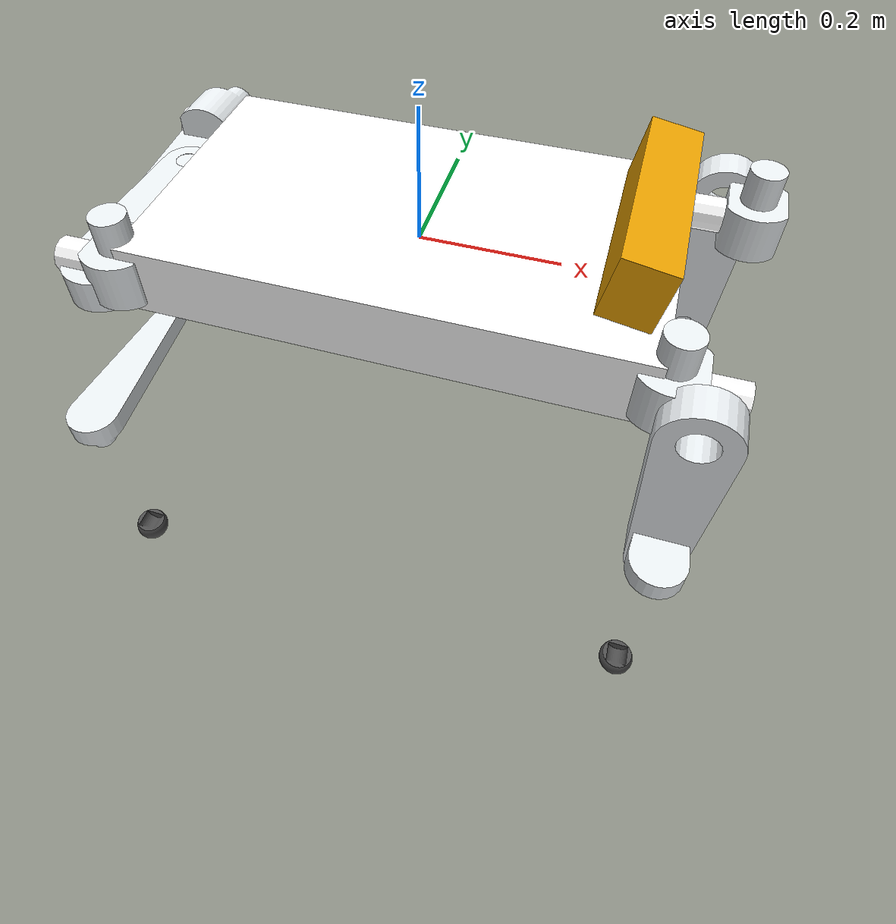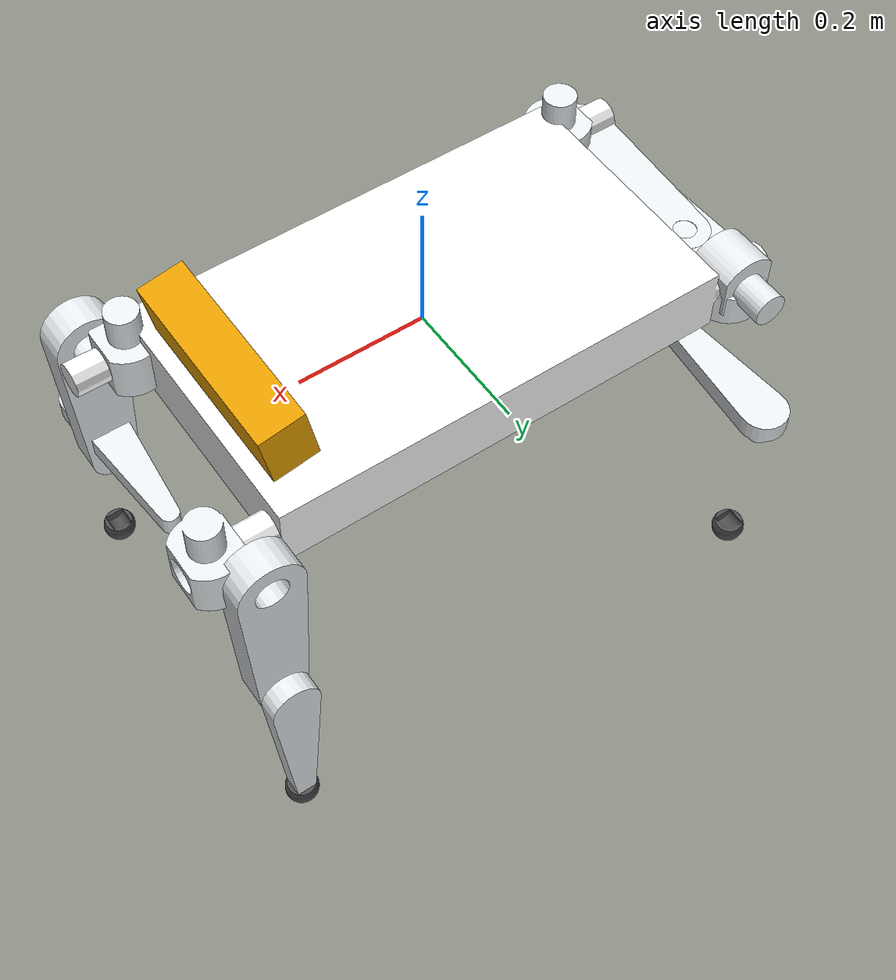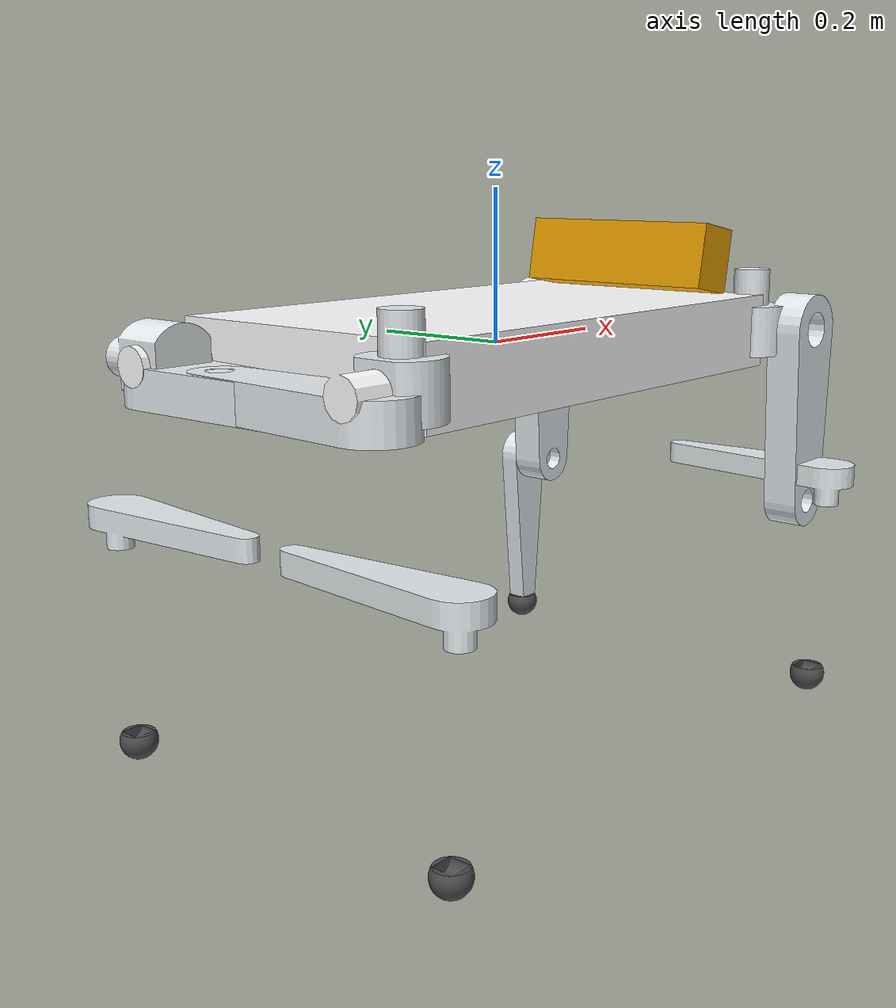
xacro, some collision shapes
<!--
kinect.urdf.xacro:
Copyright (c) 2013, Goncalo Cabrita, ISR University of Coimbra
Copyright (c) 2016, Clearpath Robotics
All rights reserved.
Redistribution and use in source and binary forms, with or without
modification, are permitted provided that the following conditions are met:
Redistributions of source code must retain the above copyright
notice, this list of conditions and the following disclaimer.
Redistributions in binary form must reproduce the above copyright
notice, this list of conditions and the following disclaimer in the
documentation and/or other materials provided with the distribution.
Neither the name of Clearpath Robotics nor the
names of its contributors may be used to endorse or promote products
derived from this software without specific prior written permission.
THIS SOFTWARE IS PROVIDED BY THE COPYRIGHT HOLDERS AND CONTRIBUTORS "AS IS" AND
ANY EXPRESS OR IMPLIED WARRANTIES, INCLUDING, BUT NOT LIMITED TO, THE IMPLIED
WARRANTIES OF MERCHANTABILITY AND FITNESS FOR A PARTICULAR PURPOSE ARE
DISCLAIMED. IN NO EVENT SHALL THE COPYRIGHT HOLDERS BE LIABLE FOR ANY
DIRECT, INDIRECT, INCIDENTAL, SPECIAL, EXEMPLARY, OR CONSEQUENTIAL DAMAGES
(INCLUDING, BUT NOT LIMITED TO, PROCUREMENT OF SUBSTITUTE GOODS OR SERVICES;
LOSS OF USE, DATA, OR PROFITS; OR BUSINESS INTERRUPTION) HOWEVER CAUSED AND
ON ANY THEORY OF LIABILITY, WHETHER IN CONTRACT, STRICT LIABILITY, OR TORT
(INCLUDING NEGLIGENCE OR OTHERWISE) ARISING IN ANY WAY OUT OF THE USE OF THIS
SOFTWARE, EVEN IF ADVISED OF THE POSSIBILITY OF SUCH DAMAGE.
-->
<?xml version="1.0" ?>
<robot name="simpledog" xmlns:xacro="http://ros.org/wiki/xacro">
<xacro:arg name="laser_visual"  default="false"/>
<xacro:arg name="camera_visual" default="false"/>
<xacro:arg name="imu_visual"    default="false"/>
<xacro:arg name="kinect_enabled"    default="true"/>
  <xacro:include filename="$(find simpledog)/urdf/simpledog_gazebo.urdf.xacro" />
  <xacro:include filename="$(find simpledog)/urdf/joint_gazebo.urdf.xacro" />
  <xacro:include filename="$(find simpledog)/urdf/kinect.urdf.xacro"/>
  <xacro:include filename="$(find simpledog)/urdf/foot_sensor_gazebo.urdf.xacro" />
<!--load kinect urdf-->
<xacro:if value="$(arg kinect_enabled)">
  <xacro:kinect_camera prefix="camera" robot_namespace="$(arg robot_namespace)"/>
  <joint name="kinect_frame_joint" type="fixed">
    <origin xyz="0.3 0 0.1" rpy="0 0.18 0" />
    <parent link="base_link"/>
    <child link="camera_link"/>
  </joint>
</xacro:if>

<!-- simple dog joints macros configure the joint driver and param-->
<xacro:simpledog_joint joint_prefix="front_left_1_"> </xacro:simpledog_joint>
<xacro:simpledog_joint joint_prefix="front_left_2_"> </xacro:simpledog_joint>
<xacro:simpledog_joint joint_prefix="front_left_3_"> </xacro:simpledog_joint>
<xacro:simpledog_joint joint_prefix="front_right_1_"> </xacro:simpledog_joint>
<xacro:simpledog_joint joint_prefix="front_right_2_"> </xacro:simpledog_joint>
<xacro:simpledog_joint joint_prefix="front_right_3_"> </xacro:simpledog_joint>
<xacro:simpledog_joint joint_prefix="rear_right_1_"> </xacro:simpledog_joint>
<xacro:simpledog_joint joint_prefix="rear_right_2_"> </xacro:simpledog_joint>
<xacro:simpledog_joint joint_prefix="rear_right_3_"> </xacro:simpledog_joint>
<xacro:simpledog_joint joint_prefix="rear_left_1_"> </xacro:simpledog_joint>
<xacro:simpledog_joint joint_prefix="rear_left_2_"> </xacro:simpledog_joint>
<xacro:simpledog_joint joint_prefix="rear_left_3_"> </xacro:simpledog_joint>

<xacro:simpledog_foot_sensors foot_prefix="lf_foot" joint_prefix="front_left_3_"> </xacro:simpledog_foot_sensors>
<xacro:simpledog_foot_sensors foot_prefix="rf_foot" joint_prefix="front_right_3_"> </xacro:simpledog_foot_sensors>
<xacro:simpledog_foot_sensors foot_prefix="rh_foot" joint_prefix="rear_right_3_"> </xacro:simpledog_foot_sensors>
<xacro:simpledog_foot_sensors foot_prefix="lh_foot" joint_prefix="rear_left_3_"> </xacro:simpledog_foot_sensors>

<link
    name="base_link">
    <inertial>
      <origin
        xyz="2.919E-17 -4.8141E-17 9.4163E-19"
        rpy="0 0 0" />
      <mass
        value="24.0" />
      <inertia
        ixx="0.74932"
        ixy="-1.2062E-17"
        ixz="-2.0602E-16"
        iyy="2.3017"
        iyz="-3.8366E-17"
        izz="2.9675" />
    </inertial>
    <visual>
      <origin
        xyz="0 0 0"
        rpy="0 0 0" />
      <geometry>
        <mesh
          filename="package://simpledog/meshes/base_link.STL" />
      </geometry>
      <material
        name="">
        <color
          rgba="1 1 1 1" />
      </material>
    </visual>
    <collision>
      <origin
        xyz="0 0 0"
        rpy="0 0 0" />
      <geometry>
        <mesh
          filename="package://simpledog/meshes/base_link.STL" />
      </geometry>
    </collision>
  </link>
  <link
    name="front_left_1_Link">
    <inertial>
      <origin
        xyz="1.7015E-17 0.012793 -0.00023552"
        rpy="0 0 0" />
      <mass
        value="1.1709" />
      <inertia
        ixx="0.001719"
        ixy="2.9302E-20"
        ixz="-1.6433E-19"
        iyy="0.0013167"
        iyz="-7.6795E-20"
        izz="0.0021511" />
    </inertial>
    <visual>
      <origin
        xyz="0 0 0"
        rpy="0 0 0" />
      <geometry>
        <mesh
          filename="package://simpledog/meshes/front_left_1_Link.STL" />
      </geometry>
      <material
        name="">
        <color
          rgba="0.89804 0.91765 0.92941 1" />
      </material>
    </visual>
    <collision>
      <origin
        xyz="0 0 0"
        rpy="0 0 0" />
      <geometry>
        <mesh
          filename="package://simpledog/meshes/front_left_1_Link.STL" />
      </geometry>
    </collision>
  </link>
  <joint
    name="front_left_1_joint"
    type="revolute">
    <origin
      xyz="0.400 0.175 0"
      rpy="1.57079632679453 1.57051603921301 1.57079632679453" />
    <parent
      link="base_link" />
    <child
      link="front_left_1_Link" />
    <axis
      xyz="0 0 1" />
      <limit
      effort="300"
      velocity="10"
      lower="-3.0"
      upper="3.0"/>
      <dynamics damping="0.7"/>
  </joint>
  <link
    name="front_left_2_Link">
    <inertial>
      <origin
        xyz="0.11439 0.00028184 0.05942"
        rpy="0 0 0" />
      <mass
        value="1.3902" />
      <inertia
        ixx="0.0030209"
        ixy="-5.6504E-20"
        ixz="2.8413E-18"
        iyy="0.026875"
        iyz="1.5349E-06"
        izz="0.028484" />
    </inertial>
    <visual>
      <origin
        xyz="0 0 0"
        rpy="0 0 0" />
      <geometry>
        <mesh
          filename="package://simpledog/meshes/front_left_2_Link.STL" />
      </geometry>
      <material
        name="">
        <color
          rgba="0.89804 0.91765 0.92941 1" />
      </material>
    </visual>
    <collision>
      <origin
        xyz="0 0 0"
        rpy="0 0 0" />
      <geometry>
        <mesh
          filename="package://simpledog/meshes/front_left_2_Link.STL" />
      </geometry>
    </collision>
  </link>
  <joint
    name="front_left_2_joint"
    type="revolute">
    <origin
      xyz="0 0 0"
      rpy="-1.5708 0 0" />
    <parent
      link="front_left_1_Link" />
    <child
      link="front_left_2_Link" />
    <axis
      xyz="0 0 1" />
      <limit
      effort="300"
      velocity="10"
      lower="-3.0"
      upper="3.0"/>
      <dynamics damping="0.7"/>
  </joint>
  <link
    name="front_left_3_Link">
    <inertial>
      <origin
        xyz="0.087825 1.529E-05 -0.016708"
        rpy="0 0 0" />
      <mass
        value="1.3523" />
      <inertia
        ixx="0.00053032"
        ixy="-8.5291E-07"
        ixz="-0.00020744"
        iyy="0.0091429"
        iyz="-8.3738E-08"
        izz="0.009338" />
    </inertial>
    <visual>
      <origin
        xyz="0 0 0"
        rpy="0 0 0" />
      <geometry>
        <mesh
          filename="package://simpledog/meshes/front_left_3_Link.STL" />
      </geometry>
      <material
        name="">
        <color
          rgba="0.89804 0.91765 0.92941 1" />
      </material>
    </visual>
    <collision>
      <origin
        xyz="0 0 0"
        rpy="0 0 0" />
      <geometry>
        <mesh
          filename="package://simpledog/meshes/front_left_3_Link.STL" />
      </geometry>
    </collision>
  </link>
  <joint
    name="front_left_3_joint"
    type="revolute">
    <origin
      xyz="0.250069171339977 0.000334332414087979 0.11441948932032"
      rpy="0 0 0" />
    <parent
      link="front_left_2_Link" />
    <child
      link="front_left_3_Link" />
    <axis
      xyz="0 0 1" />
      <limit
      effort="300"
      velocity="10"
      lower="-3.0"
      upper="3.0"/>
      <dynamics damping="0.7"/>
  </joint>
  <link
    name="lf_foot_Link">
    <inertial>
      <origin
        xyz="0.0178251114319979 0 0"
        rpy="0 0 0" />
      <mass
        value="0.0556193699314689" />
      <inertia
        ixx="1.65498601680364E-05"
        ixy="-1.00565663974796E-21"
        ixz="1.3524403015242E-22"
        iyy="1.23221647613412E-05"
        iyz="-3.56241096455504E-11"
        izz="1.25699738250509E-05" />
    </inertial>
    <visual>
      <origin
        xyz="0 0 0"
        rpy="0 0 0" />
      <geometry>
        <mesh
          filename="package://simpledog/meshes/lf_foot_Link.STL" />
      </geometry>
      <material
        name="">
        <color
          rgba="0.298039215686275 0.298039215686275 0.298039215686275 1" />
      </material>
    </visual>
    <collision>
      <origin
        xyz="0 0 0"
        rpy="0 0 0" />
      <geometry>
        <mesh
          filename="package://simpledog/meshes/lf_foot_Link.STL" />
      </geometry>
    </collision>
  </link>
  <joint
    name="lf_foot_joint"
    type="fixed">
    <origin
      xyz="0.250003601978058 0 -0.0149398452771417"
      rpy="0 0 0" />
    <parent
      link="front_left_3_Link" />
    <child
      link="lf_foot_Link" />
    <axis
      xyz="0 0 0" />
  </joint>
  <link
    name="front_right_1_Link">
    <inertial>
      <origin
        xyz="9.7104E-17 0.012793 1.6653E-16"
        rpy="0 0 0" />
      <mass
        value="1.1709" />
      <inertia
        ixx="0.001719"
        ixy="-5.88E-19"
        ixz="-1.7779E-19"
        iyy="0.0013167"
        iyz="-2.0543E-19"
        izz="0.0021511" />
    </inertial>
    <visual>
      <origin
        xyz="0 0 0"
        rpy="0 0 0" />
      <geometry>
        <mesh
          filename="package://simpledog/meshes/front_right_1_Link.STL" />
      </geometry>
      <material
        name="">
        <color
          rgba="0.89804 0.91765 0.92941 1" />
      </material>
    </visual>
    <collision>
      <origin
        xyz="0 0 0"
        rpy="0 0 0" />
      <geometry>
        <mesh
          filename="package://simpledog/meshes/front_right_1_Link.STL" />
      </geometry>
    </collision>
  </link>
  <joint
    name="front_right_1_joint"
    type="revolute">
    <origin
      xyz="0.4 -0.175 0"
      rpy="1.5708 1.5708 -1.5708" />
    <parent
      link="base_link" />
    <child
      link="front_right_1_Link" />
    <axis
      xyz="0 0 1" />
      <limit
      effort="300"
      velocity="10"
      lower="-3.0"
      upper="3.0"/>
      <dynamics damping="0.7"/>
  </joint>
  <link
    name="front_right_2_Link">
    <inertial>
      <origin
        xyz="0.11432 -5.5511E-17 0.05942"
        rpy="0 0 0" />
      <mass
        value="1.3902" />
      <inertia
        ixx="0.0030209"
        ixy="-4.0905E-18"
        ixz="-8.1586E-10"
        iyy="0.026875"
        iyz="2.3399E-19"
        izz="0.028484" />
    </inertial>
    <visual>
      <origin
        xyz="0 0 0"
        rpy="0 0 0" />
      <geometry>
        <mesh
          filename="package://simpledog/meshes/front_right_2_Link.STL" />
      </geometry>
      <material
        name="">
        <color
          rgba="0.89804 0.91765 0.92941 1" />
      </material>
    </visual>
    <collision>
      <origin
        xyz="0 0 0"
        rpy="0 0 0" />
      <geometry>
        <mesh
          filename="package://simpledog/meshes/front_right_2_Link.STL" />
      </geometry>
    </collision>
  </link>
  <joint
    name="front_right_2_joint"
    type="revolute">
    <origin
      xyz="0 0 0"
      rpy="-1.5708 0 0" />
    <parent
      link="front_right_1_Link" />
    <child
      link="front_right_2_Link" />
    <axis
      xyz="0 0 1" />
      <limit
      effort="300"
      velocity="10"
      lower="-3.0"
      upper="3.0"/>
      <dynamics damping="0.7"/>
  </joint>
  <link
    name="front_right_3_Link">
    <inertial>
      <origin
        xyz="0.087821 6.7221E-06 -0.016729"
        rpy="0 0 0" />
      <mass
        value="1.3523" />
      <inertia
        ixx="0.00053022"
        ixy="-9.5809E-07"
        ixz="-0.00020532"
        iyy="0.0091429"
        iyz="1.6437E-08"
        izz="0.0093381" />
    </inertial>
    <visual>
      <origin
        xyz="0 0 0"
        rpy="0 0 0" />
      <geometry>
        <mesh
          filename="package://simpledog/meshes/front_right_3_Link.STL" />
      </geometry>
      <material
        name="">
        <color
          rgba="0.89804 0.91765 0.92941 1" />
      </material>
    </visual>
    <collision>
      <origin
        xyz="0 0 0"
        rpy="0 0 0" />
      <geometry>
        <mesh
          filename="package://simpledog/meshes/front_right_3_Link.STL" />
      </geometry>
    </collision>
  </link>
  <joint
    name="front_right_3_joint"
    type="revolute">
    <origin
      xyz="0.249999996334044 0 0.114419764295838"
      rpy="0 0 0" />
    <parent
      link="front_right_2_Link" />
    <child
      link="front_right_3_Link" />
    <axis
      xyz="0 0 1" />
      <limit
      effort="300"
      velocity="10"
      lower="-3.0"
      upper="3.0"/>
      <dynamics damping="0.7"/>
  </joint>
  <link
    name="rf_foot_Link">
    <inertial>
      <origin
        xyz="0.017825 0 0"
        rpy="0 0 0" />
      <mass
        value="0.055619" />
      <inertia
        ixx="1.655E-05"
        ixy="2.2089E-21"
        ixz="-1.1638E-21"
        iyy="1.2322E-05"
        iyz="-2.0835E-21"
        izz="1.257E-05" />
    </inertial>
    <visual>
      <origin
        xyz="0 0 0"
        rpy="0 0 0" />
      <geometry>
        <mesh
          filename="package://simpledog/meshes/rf_foot_Link.STL" />
      </geometry>
      <material
        name="">
        <color
          rgba="0.29804 0.29804 0.29804 1" />
      </material>
    </visual>
    <collision>
      <origin
        xyz="0 0 0"
        rpy="0 0 0" />
      <geometry>
        <mesh
          filename="package://simpledog/meshes/rf_foot_Link.STL" />
      </geometry>
    </collision>
  </link>
  <joint
    name="rf_foot_joint"
    type="fixed">
    <origin
      xyz="0.25 0 -0.0149999996816874"
      rpy="-0.00020601381558494 5.03069808033274E-17 -4.99600361081321E-16" />
    <parent
      link="front_right_3_Link" />
    <child
      link="rf_foot_Link" />
    <axis
      xyz="0 0 0" />
  </joint>
  <link
    name="rear_left_1_Link">
    <inertial>
      <origin
        xyz="5.7896E-17 0.012793 2.7756E-16"
        rpy="0 0 0" />
      <mass
        value="1.1709" />
      <inertia
        ixx="0.001719"
        ixy="-2.0371E-19"
        ixz="5.3128E-21"
        iyy="0.0013167"
        iyz="-3.3901E-19"
        izz="0.0021511" />
    </inertial>
    <visual>
      <origin
        xyz="0 0 0"
        rpy="0 0 0" />
      <geometry>
        <mesh
          filename="package://simpledog/meshes/rear_left_1_Link.STL" />
      </geometry>
      <material
        name="">
        <color
          rgba="0.89804 0.91765 0.92941 1" />
      </material>
    </visual>
    <collision>
      <origin
        xyz="0 0 0"
        rpy="0 0 0" />
      <geometry>
        <mesh
          filename="package://simpledog/meshes/rear_left_1_Link.STL" />
      </geometry>
    </collision>
  </link>
  <joint
    name="rear_left_1_joint"
    type="revolute">
    <origin
      xyz="-0.4 0.175 0"
      rpy="1.57079632679488 1.56519932988528 1.57079632679488" />
    <parent
      link="base_link" />
    <child
      link="rear_left_1_Link" />
    <axis
      xyz="0 0 1" />
      <limit
      effort="300"
      velocity="10"
      lower="-3.0"
      upper="3.0"/>
      <dynamics damping="0.7"/>
  </joint>
  <link
    name="rear_left_2_Link">
    <inertial>
      <origin
        xyz="0.11432 0 0.05942"
        rpy="0 0 0" />
      <mass
        value="1.3902" />
      <inertia
        ixx="0.0030209"
        ixy="-1.8526E-18"
        ixz="2.5242E-19"
        iyy="0.026875"
        iyz="3.7608E-19"
        izz="0.028484" />
    </inertial>
    <visual>
      <origin
        xyz="0 0 0"
        rpy="0 0 0" />
      <geometry>
        <mesh
          filename="package://simpledog/meshes/rear_left_2_Link.STL" />
      </geometry>
      <material
        name="">
        <color
          rgba="0.89804 0.91765 0.92941 1" />
      </material>
    </visual>
    <collision>
      <origin
        xyz="0 0 0"
        rpy="0 0 0" />
      <geometry>
        <mesh
          filename="package://simpledog/meshes/rear_left_2_Link.STL" />
      </geometry>
    </collision>
  </link>
  <joint
    name="rear_left_2_joint"
    type="revolute">
    <origin
      xyz="0 0 0"
      rpy="-1.5707963267949 0 0" />
    <parent
      link="rear_left_1_Link" />
    <child
      link="rear_left_2_Link" />
    <axis
      xyz="0 0 1" />
      <limit
      effort="300"
      velocity="10"
      lower="-3.0"
      upper="3.0"/>
      <dynamics damping="0.7"/>
  </joint>
  <link
    name="rear_left_3_Link">
    <inertial>
      <origin
        xyz="0.087821 5.7424E-05 -0.016729"
        rpy="0 0 0" />
      <mass
        value="1.3523" />
      <inertia
        ixx="0.00053022"
        ixy="-3.3581E-07"
        ixz="-0.00020532"
        iyy="0.0091429"
        iyz="-5.7512E-07"
        izz="0.0093381" />
    </inertial>
    <visual>
      <origin
        xyz="0 0 0"
        rpy="0 0 0" />
      <geometry>
        <mesh
          filename="package://simpledog/meshes/rear_left_3_Link.STL" />
      </geometry>
      <material
        name="">
        <color
          rgba="0.89804 0.91765 0.92941 1" />
      </material>
    </visual>
    <collision>
      <origin
        xyz="0 0 0"
        rpy="0 0 0" />
      <geometry>
        <mesh
          filename="package://simpledog/meshes/rear_left_3_Link.STL" />
      </geometry>
    </collision>
  </link>
  <joint
    name="rear_left_3_joint"
    type="revolute">
    <origin
      xyz="0.25 0 0.114419756285561"
      rpy="0 0 0" />
    <parent
      link="rear_left_2_Link" />
    <child
      link="rear_left_3_Link" />
    <axis
      xyz="0 0 1" />
      <limit
      effort="300"
      velocity="10"
      lower="-3.0"
      upper="3.0"/>
      <dynamics damping="0.7"/>
  </joint>
  <link
    name="lh_foot_Link">
    <inertial>
      <origin
        xyz="0.017825 -1.1102E-16 5.5511E-17"
        rpy="0 0 0" />
      <mass
        value="0.055619" />
      <inertia
        ixx="1.655E-05"
        ixy="3.2567E-22"
        ixz="-9.7111E-22"
        iyy="1.2322E-05"
        iyz="5.4896E-20"
        izz="1.257E-05" />
    </inertial>
    <visual>
      <origin
        xyz="0 0 0"
        rpy="0 0 0" />
      <geometry>
        <mesh
          filename="package://simpledog/meshes/rh_foot_Link.STL" />
      </geometry>
      <material
        name="">
        <color
          rgba="0.29804 0.29804 0.29804 1" />
      </material>
    </visual>
    <collision>
      <origin
        xyz="0 0 0"
        rpy="0 0 0" />
      <geometry>
        <mesh
          filename="package://simpledog/meshes/rh_foot_Link.STL" />
      </geometry>
    </collision>
  </link>
  <joint
    name="lh_foot_joint"
    type="fixed">
    <origin
      xyz="0.24742286767759 0.000379574544590811 -0.015"
      rpy="0 0 0" />
    <parent
      link="rear_left_3_Link" />
    <child
      link="lh_foot_Link" />
    <axis
      xyz="0 0 0" />
  </joint>
  <link
    name="rear_right_1_Link">
    <inertial>
      <origin
        xyz="-6.2968E-06 0.012793 0.0003022"
        rpy="0 0 0" />
      <mass
        value="1.1709" />
      <inertia
        ixx="0.001719"
        ixy="1.9803E-07"
        ixz="-1.4315E-19"
        iyy="0.0013167"
        iyz="-1.2614E-19"
        izz="0.0021511" />
    </inertial>
    <visual>
      <origin
        xyz="0 0 0"
        rpy="0 0 0" />
      <geometry>
        <mesh
          filename="package://simpledog/meshes/rear_right_1_Link.STL" />
      </geometry>
      <material
        name="">
        <color
          rgba="0.89804 0.91765 0.92941 1" />
      </material>
    </visual>
    <collision>
      <origin
        xyz="0 0 0"
        rpy="0 0 0" />
      <geometry>
        <mesh
          filename="package://simpledog/meshes/rear_right_1_Link.STL" />
      </geometry>
    </collision>
  </link>
  <joint
    name="rear_right_1_joint"
    type="revolute">
    <origin
      xyz="-0.4 -0.175 0"
      rpy="1.5708 1.5708 -1.5708" />
    <parent
      link="base_link" />
    <child
      link="rear_right_1_Link" />
    <axis
      xyz="0 0 1" />
      <limit
      effort="300"
      velocity="10"
      lower="-3.0"
      upper="3.0"/>
      <dynamics damping="0.7"/>
  </joint>
  <link
    name="rear_right_2_Link">
    <inertial>
      <origin
        xyz="0.11443 -8.407E-05 0.05942"
        rpy="0 0 0" />
      <mass
        value="1.3902" />
      <inertia
        ixx="0.0030209"
        ixy="-4.1489E-12"
        ixz="-1.2337E-09"
        iyy="0.026876"
        iyz="5.4085E-06"
        izz="0.028484" />
    </inertial>
    <visual>
      <origin
        xyz="0 0 0"
        rpy="0 0 0" />
      <geometry>
        <mesh
          filename="package://simpledog/meshes/rear_right_2_Link.STL" />
      </geometry>
      <material
        name="">
        <color
          rgba="0.89804 0.91765 0.92941 1" />
      </material>
    </visual>
    <collision>
      <origin
        xyz="0 0 0"
        rpy="0 0 0" />
      <geometry>
        <mesh
          filename="package://simpledog/meshes/rear_right_2_Link.STL" />
      </geometry>
    </collision>
  </link>
  <joint
    name="rear_right_2_joint"
    type="revolute">
    <origin
      xyz="0 0 0"
      rpy="-1.5708 0 0" />
    <parent
      link="rear_right_1_Link" />
    <child
      link="rear_right_2_Link" />
    <axis
      xyz="0 0 1" />
      <limit
      effort="300"
      velocity="10"
      lower="-3.0"
      upper="3.0"/>
      <dynamics damping="0.7"/>
  </joint>
  <link
    name="rear_right_3_Link">
    <inertial>
      <origin
        xyz="0.087821 6.0067E-06 -0.016729"
        rpy="0 0 0" />
      <mass
        value="1.3523" />
      <inertia
        ixx="0.00053022"
        ixy="-9.6687E-07"
        ixz="-0.00020532"
        iyy="0.0091429"
        iyz="2.4784E-08"
        izz="0.0093381" />
    </inertial>
    <visual>
      <origin
        xyz="0 0 0"
        rpy="0 0 0" />
      <geometry>
        <mesh
          filename="package://simpledog/meshes/rear_right_3_Link.STL" />
      </geometry>
      <material
        name="">
        <color
          rgba="0.89804 0.91765 0.92941 1" />
      </material>
    </visual>
    <collision>
      <origin
        xyz="0 0 0"
        rpy="0 0 0" />
      <geometry>
        <mesh
          filename="package://simpledog/meshes/rear_right_3_Link.STL" />
      </geometry>
    </collision>
  </link>
  <joint
    name="rear_right_3_joint"
    type="revolute">
    <origin
      xyz="0.25010358767993 0.0001008844556592 0.114420076111023"
      rpy="0 0 0" />
    <parent
      link="rear_right_2_Link" />
    <child
      link="rear_right_3_Link" />
    <axis
      xyz="0 0 1" />
      <limit
      effort="300"
      velocity="10"
      lower="-3.0"
      upper="3.0"/>
      <dynamics damping="0.7"/>
  </joint>
  <link
    name="rh_foot_Link">
    <inertial>
      <origin
        xyz="0.017825 -1.1102E-16 0"
        rpy="0 0 0" />
      <mass
        value="0.055619" />
      <inertia
        ixx="1.655E-05"
        ixy="2.3509E-21"
        ixz="-1.4161E-21"
        iyy="1.2322E-05"
        iyz="6.8491E-22"
        izz="1.257E-05" />
    </inertial>
    <visual>
      <origin
        xyz="0 0 0"
        rpy="0 0 0" />
      <geometry>
        <mesh
          filename="package://simpledog/meshes/lh_foot_Link.STL" />
      </geometry>
      <material
        name="">
        <color
          rgba="0.29804 0.29804 0.29804 1" />
      </material>
    </visual>
    <collision>
      <origin
        xyz="0 0 0"
        rpy="0 0 0" />
      <geometry>
        <mesh
          filename="package://simpledog/meshes/lh_foot_Link.STL" />
      </geometry>
    </collision>
  </link>
  <joint
    name="rh_foot_joint"
    type="fixed">
    <origin
      xyz="0.24968 0.00033355 -0.015"
      rpy="0 0 0" />
    <parent
      link="rear_right_3_Link" />
    <child
      link="rh_foot_Link" />
    <axis
      xyz="0 0 0" />
  </joint>

</robot>

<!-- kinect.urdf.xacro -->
<robot xmlns:xacro="http://ros.org/wiki/xacro" name="kinect_camera">

  <xacro:macro name="kinect_camera" params="prefix:=camera robot_namespace:=/">
    <!-- Create kinect reference frame -->
    <!-- Add mesh for kinect -->
    <link name="${prefix}_link">
      <origin xyz="0 0 0" rpy="0 0 0"/>
      <mass
        value="1.238" />
      <visual>
        <origin xyz="0 0 0" rpy="0 0 1.5708"/>
        <geometry>
          <mesh filename="package://simpledog/meshes/kinect.dae" />
        </geometry>
      </visual>
      <collision>
        <geometry>
          <box size="0.07 0.3 0.09"/>
        </geometry>
      </collision>
    </link>

    <joint name="${prefix}_optical_joint" type="fixed">
      <origin xyz="0 0 0" rpy="-1.5708 0 -1.5708"/>
      <parent link="${prefix}_link"/>
      <child link="${prefix}_frame_optical"/>
    </joint>

    <link name="${prefix}_frame_optical"/>

    <gazebo reference="${prefix}_link">
      <sensor type="depth" name="${prefix}">
        <always_on>true</always_on>
        <update_rate>10.0</update_rate>
        <camera>
          <horizontal_fov>${60.0*3.14/180.0}</horizontal_fov>
          <image>
            <format>R8G8B8</format>
            <width>640</width>
            <height>480</height>
          </image>
          <clip>
            <near>0.05</near>
            <far>8.0</far>
          </clip>
        </camera>
        <plugin name="kinect_${prefix}_controller" filename="libgazebo_ros_openni_kinect.so">
          <cameraName>${prefix}</cameraName>
          <alwaysOn>true</alwaysOn>
          <updateRate>10.0</updateRate>
          <pointCloudTopicName>depth/points</pointCloudTopicName>
          <cameraInfoTopicName>rgb/camera_info</cameraInfoTopicName>
          <depthImageCameraInfoTopicName>depth/camera_info</depthImageCameraInfoTopicName>
          <frameName>${prefix}_frame_optical</frameName>
          <baseline>0.1</baseline>
          <distortion_k1>0.0</distortion_k1>
          <distortion_k2>0.0</distortion_k2>
          <distortion_k3>0.0</distortion_k3>
          <distortion_t1>0.0</distortion_t1>
          <distortion_t2>0.0</distortion_t2>
          <pointCloudCutoff>0.4</pointCloudCutoff>
          <robotNamespace>${robot_namespace}</robotNamespace>
        </plugin>
      </sensor>
    </gazebo>
  </xacro:macro>
</robot>
